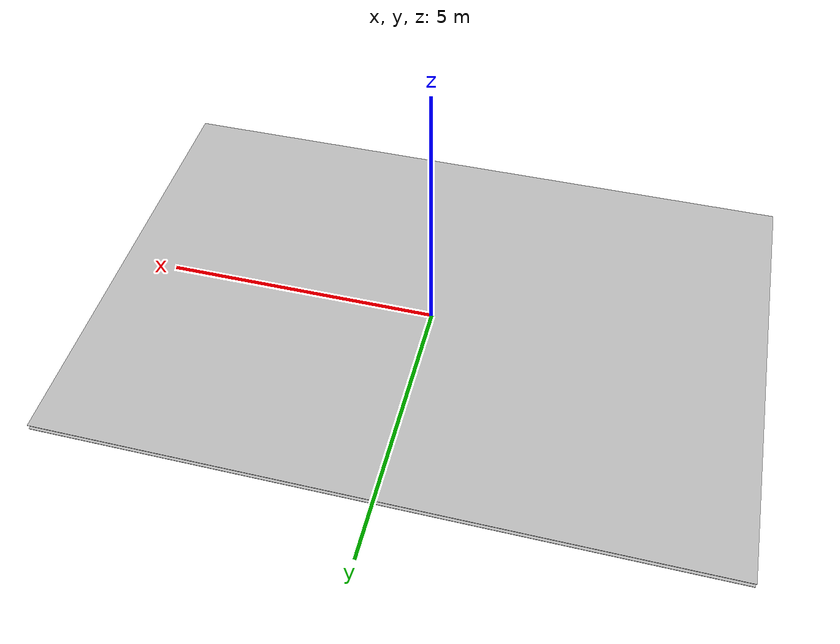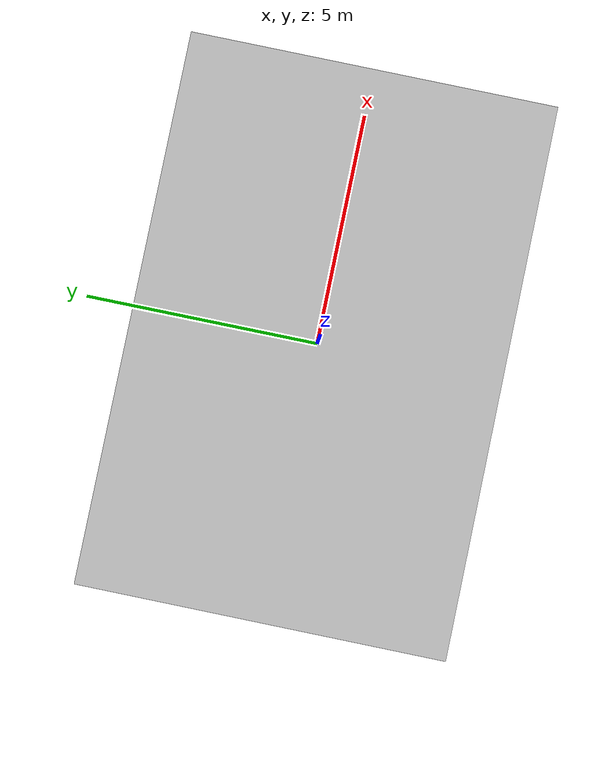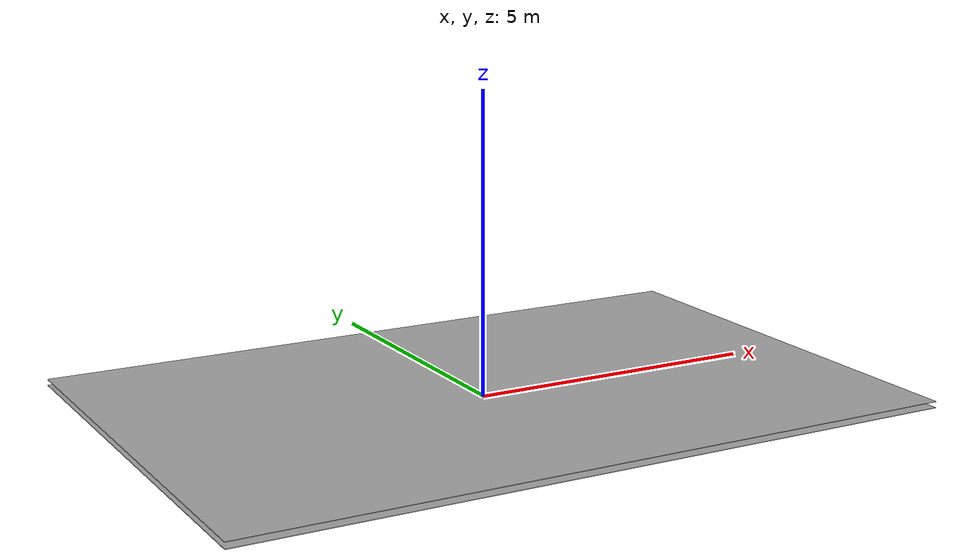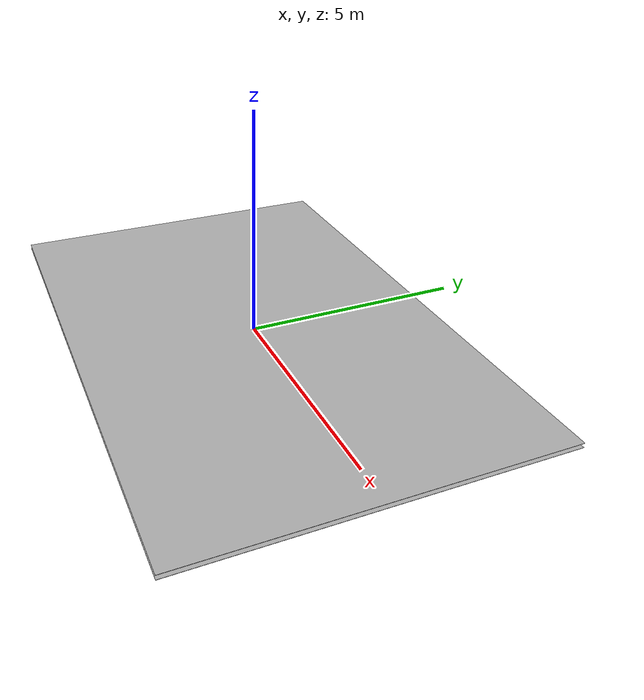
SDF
<?xml version="1.0" ?>

<sdf version="1.8">
  <world name="warehouse_world">
    <!-- type is a required attribute in SDF 1.8; the value itself is ignored
         by gz-sim (the engine is chosen by the Physics system plugin below) -->
    <physics type="ignored">
      <max_step_size>0.001</max_step_size>
      <real_time_factor>1.0</real_time_factor>
      <real_time_update_rate>1000.0</real_time_update_rate>
    </physics>

    <plugin
      filename="gz-sim-physics-system"
      name="gz::sim::systems::Physics">
    </plugin>
    <plugin
      filename="gz-sim-scene-broadcaster-system"
      name="gz::sim::systems::SceneBroadcaster">
    </plugin>
    <plugin
      filename="gz-sim-user-commands-system"
      name="gz::sim::systems::UserCommands">
    </plugin>

    <light name="sun" type="directional">
      <cast_shadows>true</cast_shadows>
      <pose>0 0 10 0 0 0</pose>
      <diffuse>0.8 0.8 0.8 1</diffuse>
      <specular>0.2 0.2 0.2 1</specular>
      <attenuation>
        <range>1000</range>
        <constant>0.9</constant>
        <linear>0.01</linear>
        <quadratic>0.001</quadratic>
      </attenuation>
      <direction>-0.5 0.1 -0.9</direction>
    </light>

    <model name="warehouse">
        <static>true</static>
        <self_collide>false</self_collide>
        <pose>0 0 0 0 0 0</pose>
        <include>
            <uri>package://hexapod_description/models/Warehouse/model.sdf</uri>
        </include>
    </model>

  </world>
</sdf>

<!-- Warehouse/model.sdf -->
<sdf version="1.7">
    <model name="warehouse">
        <pose>0 0 0 0 0 0</pose>
        <self_collide>false</self_collide>
        <!-- BASE_LINK FRAME -->
        <link name="warehouse_base">
            <pose>0 0 0 0 0 0</pose>
            <collision name="warehouse_collision">
                <pose>0 0 0.1 0 0 0</pose>
                <geometry>
                    <plane>
                        <normal>0 0 1</normal>
                        <size>100 100</size>
                    </plane>
                </geometry>
            </collision>
            <visual name="warehouse_visual">
                <pose>0 0 0 0 0 0</pose>
                <geometry>
                    <mesh>
                        <scale>1 1 1</scale>
                        <uri>meshes/warehouse.dae</uri>
                    </mesh>
                </geometry>
            </visual>
            <visual name="drop_area_visual">
                <pose>0 0 0.101 0 0 0</pose>
                <geometry>
                    <mesh>
                        <scale>1 1 1</scale>
                        <uri>meshes/warehouse.dae</uri>
                        <submesh>
                            <name>drop1</name>
                            <center>true</center>
                        </submesh>
                    </mesh>
                </geometry>
            </visual>
        </link>
        <static>1</static>
    </model>
</sdf>
